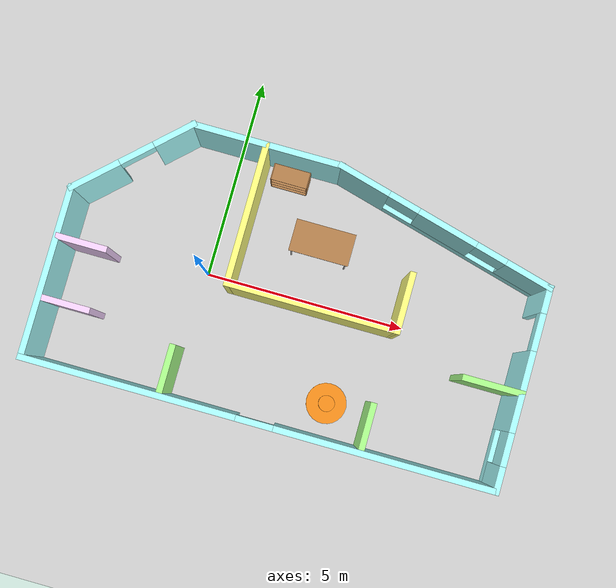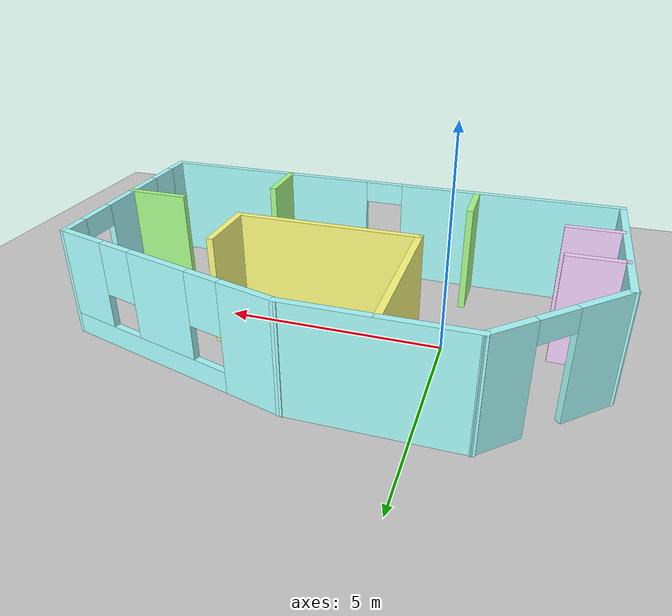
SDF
<sdf version="1.6">
 <world name="default">
  <light name="sun" type="directional">
   <pose>0 0 10 0 -0 0</pose>
   <diffuse>0.8 0.8 0.8 1</diffuse>
   <specular>0.2 0.2 0.2 1</specular>
   <attenuation>
    <range>1000</range>
    <constant>0.9</constant>
    <linear>0.01</linear>
    <quadratic>0.001</quadratic>
   </attenuation>
   <direction>-0.5 0.1 -0.9</direction>
  </light>
  <model name="ground_plane">
   <static>1</static>
   <link name="link">
    <collision name="collision">
     <geometry><plane><normal>0 0 1</normal><size>100 100</size></plane></geometry>
     <surface><friction><ode><mu>100</mu><mu2>50</mu2></ode></friction></surface>
    </collision>
    <visual name="visual">
     <cast_shadows>0</cast_shadows>
     <geometry><plane><normal>0 0 1</normal><size>100 100</size></plane></geometry>
     <material>
      <script><uri>file://media/materials/scripts/gazebo.material</uri><name>Gazebo/Grey</name></script>
     </material>
    </visual>
   </link>
  </model>
  <gravity>0 0 -9.8</gravity>
  <magnetic_field>6e-06 2.3e-05 -4.2e-05</magnetic_field>
  <atmosphere type="adiabatic"/>
  <physics name="default_physics" default="0" type="ode">
   <max_step_size>0.001</max_step_size>
   <real_time_factor>1</real_time_factor>
   <real_time_update_rate>1000</real_time_update_rate>
  </physics>
  <scene><ambient>0.4 0.4 0.4 1</ambient><background>0.7 0.7 0.7 1</background><shadows>1</shadows></scene>
  <spherical_coordinates>
   <surface_model>EARTH_WGS84</surface_model>
   <latitude_deg>0</latitude_deg>
   <longitude_deg>0</longitude_deg>
   <elevation>0</elevation>
   <heading_deg>0</heading_deg>
  </spherical_coordinates>
  <model name="building">
   <pose>2.22048 0.011721 0 0 -0 0</pose>
   <link name="Wall_0">
    <collision name="Wall_0_Collision">
     <geometry><box><size>3.75 0.15 2.5</size></box></geometry>
     <pose>0 0 1.25 0 -0 0</pose>
    </collision>
    <visual name="Wall_0_Visual">
     <pose>0 0 1.25 0 -0 0</pose>
     <geometry><box><size>3.75 0.15 2.5</size></box></geometry>
     <material>
      <script><uri>file://media/materials/scripts/gazebo.material</uri><name>Gazebo/Grey</name></script>
      <ambient>0.666667 1 1 1</ambient>
     </material>
     <meta><layer>0</layer></meta>
    </visual>
    <pose>-1.5271 3.13419 0 0 -0 0</pose>
   </link>
   <link name="Wall_1">
    <pose>2.97749 2.40949 0 0 0 -0.261799</pose>
    <visual name="Wall_1_Visual_0">
     <pose>-2.18873 0 1.25 0 -0 0</pose>
     <geometry><box><size>1.37255 0.15 2.5</size></box></geometry>
     <material>
      <script><uri>file://media/materials/scripts/gazebo.material</uri><name>Gazebo/Grey</name></script>
      <ambient>0.666667 1 1 1</ambient>
     </material>
     <meta><layer>0</layer></meta>
    </visual>
    <collision name="Wall_1_Collision_0">
     <geometry><box><size>1.37255 0.15 2.5</size></box></geometry>
     <pose>-2.18873 0 1.25 0 -0 0</pose>
    </collision>
    <visual name="Wall_1_Visual_1">
     <pose>0.686274 0 0.25 0 -0 0</pose>
     <geometry><box><size>4.37745 0.15 0.5</size></box></geometry>
     <material>
      <script><uri>file://media/materials/scripts/gazebo.material</uri><name>Gazebo/Grey</name></script>
      <ambient>0.666667 1 1 1</ambient>
     </material>
     <meta><layer>0</layer></meta>
    </visual>
    <collision name="Wall_1_Collision_1">
     <geometry><box><size>4.37745 0.15 0.5</size></box></geometry>
     <pose>0.686274 0 0.25 0 -0 0</pose>
    </collision>
    <visual name="Wall_1_Visual_2">
     <pose>0.069518 0 1.5 0 -0 0</pose>
     <geometry><box><size>1.54394 0.15 2</size></box></geometry>
     <material>
      <script><uri>file://media/materials/scripts/gazebo.material</uri><name>Gazebo/Grey</name></script>
      <ambient>0.666667 1 1 1</ambient>
     </material>
     <meta><layer>0</layer></meta>
    </visual>
    <collision name="Wall_1_Collision_2">
     <geometry><box><size>1.54394 0.15 2</size></box></geometry>
     <pose>0.069518 0 1.5 0 -0 0</pose>
    </collision>
    <visual name="Wall_1_Visual_3">
     <pose>2.25824 0 1.5 0 -0 0</pose>
     <geometry><box><size>1.23351 0.15 2</size></box></geometry>
     <material>
      <script><uri>file://media/materials/scripts/gazebo.material</uri><name>Gazebo/Grey</name></script>
      <ambient>0.666667 1 1 1</ambient>
     </material>
     <meta><layer>0</layer></meta>
    </visual>
    <collision name="Wall_1_Collision_3">
     <geometry><box><size>1.23351 0.15 2</size></box></geometry>
     <pose>2.25824 0 1.5 0 -0 0</pose>
    </collision>
    <visual name="Wall_1_Visual_4">
     <pose>-1.10245 0 1.9 0 -0 0</pose>
     <geometry><box><size>0.8 0.15 1.2</size></box></geometry>
     <material>
      <script><uri>file://media/materials/scripts/gazebo.material</uri><name>Gazebo/Grey</name></script>
      <ambient>0.666667 1 1 1</ambient>
     </material>
     <meta><layer>0</layer></meta>
    </visual>
    <collision name="Wall_1_Collision_4">
     <geometry><box><size>0.8 0.15 1.2</size></box></geometry>
     <pose>-1.10245 0 1.9 0 -0 0</pose>
    </collision>
    <visual name="Wall_1_Visual_5">
     <pose>1.24149 0 1.9 0 -0 0</pose>
     <geometry><box><size>0.8 0.15 1.2</size></box></geometry>
     <material>
      <script><uri>file://media/materials/scripts/gazebo.material</uri><name>Gazebo/Grey</name></script>
      <ambient>0.666667 1 1 1</ambient>
     </material>
     <meta><layer>0</layer></meta>
    </visual>
    <collision name="Wall_1_Collision_5">
     <geometry><box><size>0.8 0.15 1.2</size></box></geometry>
     <pose>1.24149 0 1.9 0 -0 0</pose>
    </collision>
   </link>
   <link name="Wall_14">
    <collision name="Wall_14_Collision">
     <geometry><box><size>1.25 0.15 2.5</size></box></geometry>
     <pose>0 0 1.25 0 -0 0</pose>
    </collision>
    <visual name="Wall_14_Visual">
     <pose>0 0 1.25 0 -0 0</pose>
     <geometry><box><size>1.25 0.15 2.5</size></box></geometry>
     <material>
      <script><uri>file://media/materials/scripts/gazebo.material</uri><name>Gazebo/Grey</name></script>
      <ambient>0.964706 0.827451 1 1</ambient>
     </material>
     <meta><layer>0</layer></meta>
    </visual>
    <pose>-5.07005 -0.244894 0 0 -0 0</pose>
   </link>
   <link name="Wall_16">
    <collision name="Wall_16_Collision">
     <geometry><box><size>1.25 0.15 2.5</size></box></geometry>
     <pose>0 0 1.25 0 -0 0</pose>
    </collision>
    <visual name="Wall_16_Visual">
     <pose>0 0 1.25 0 -0 0</pose>
     <geometry><box><size>1.25 0.15 2.5</size></box></geometry>
     <material>
      <script><uri>file://media/materials/scripts/gazebo.material</uri><name>Gazebo/Grey</name></script>
      <ambient>0.964706 0.827451 1 1</ambient>
     </material>
     <meta><layer>0</layer></meta>
    </visual>
    <pose>-5.04994 -1.71318 0 0 -0 0</pose>
   </link>
   <link name="Wall_18">
    <collision name="Wall_18_Collision">
     <geometry><box><size>1.5 0.15 2.5</size></box></geometry>
     <pose>0 0 1.25 0 -0 0</pose>
    </collision>
    <visual name="Wall_18_Visual">
     <pose>0 0 1.25 0 -0 0</pose>
     <geometry><box><size>1.5 0.15 2.5</size></box></geometry>
     <material>
      <script><uri>file://media/materials/scripts/gazebo.material</uri><name>Gazebo/Grey</name></script>
      <ambient>0.666667 1 0.545098 1</ambient>
     </material>
     <meta><layer>0</layer></meta>
    </visual>
    <pose>5.00877 -0.848301 0 0 -0 3.14159</pose>
   </link>
   <link name="Wall_2">
    <pose>5.68208 -0.740201 0 0 0 -1.5708</pose>
    <visual name="Wall_2_Visual_0">
     <pose>-2.1551 0 1.25 0 -0 0</pose>
     <geometry><box><size>0.68981 0.15 2.5</size></box></geometry>
     <material>
      <script><uri>file://media/materials/scripts/gazebo.material</uri><name>Gazebo/Grey</name></script>
      <ambient>0.666667 1 1 1</ambient>
     </material>
     <meta><layer>0</layer></meta>
    </visual>
    <collision name="Wall_2_Collision_0">
     <geometry><box><size>0.68981 0.15 2.5</size></box></geometry>
     <pose>-2.1551 0 1.25 0 -0 0</pose>
    </collision>
    <visual name="Wall_2_Visual_1">
     <pose>0.062703 0 1.25 0 -0 0</pose>
     <geometry><box><size>1.94579 0.15 2.5</size></box></geometry>
     <material>
      <script><uri>file://media/materials/scripts/gazebo.material</uri><name>Gazebo/Grey</name></script>
      <ambient>0.666667 1 1 1</ambient>
     </material>
     <meta><layer>0</layer></meta>
    </visual>
    <collision name="Wall_2_Collision_1">
     <geometry><box><size>1.94579 0.15 2.5</size></box></geometry>
     <pose>0.062703 0 1.25 0 -0 0</pose>
    </collision>
    <visual name="Wall_2_Visual_2">
     <pose>1.7678 0 0.25 0 -0 0</pose>
     <geometry><box><size>1.4644 0.15 0.5</size></box></geometry>
     <material>
      <script><uri>file://media/materials/scripts/gazebo.material</uri><name>Gazebo/Grey</name></script>
      <ambient>0.666667 1 1 1</ambient>
     </material>
     <meta><layer>0</layer></meta>
    </visual>
    <collision name="Wall_2_Collision_2">
     <geometry><box><size>1.4644 0.15 0.5</size></box></geometry>
     <pose>1.7678 0 0.25 0 -0 0</pose>
    </collision>
    <visual name="Wall_2_Visual_3">
     <pose>2.1678 0 1.5 0 -0 0</pose>
     <geometry><box><size>0.664404 0.15 2</size></box></geometry>
     <material>
      <script><uri>file://media/materials/scripts/gazebo.material</uri><name>Gazebo/Grey</name></script>
      <ambient>0.666667 1 1 1</ambient>
     </material>
     <meta><layer>0</layer></meta>
    </visual>
    <collision name="Wall_2_Collision_3">
     <geometry><box><size>0.664404 0.15 2</size></box></geometry>
     <pose>2.1678 0 1.5 0 -0 0</pose>
    </collision>
    <visual name="Wall_2_Visual_4">
     <pose>1.4356 0 1.9 0 -0 0</pose>
     <geometry><box><size>0.8 0.15 1.2</size></box></geometry>
     <material>
      <script><uri>file://media/materials/scripts/gazebo.material</uri><name>Gazebo/Grey</name></script>
      <ambient>0.666667 1 1 1</ambient>
     </material>
     <meta><layer>0</layer></meta>
    </visual>
    <collision name="Wall_2_Collision_4">
     <geometry><box><size>0.8 0.15 1.2</size></box></geometry>
     <pose>1.4356 0 1.9 0 -0 0</pose>
    </collision>
    <visual name="Wall_2_Visual_5">
     <pose>-1.36019 0 2.25 0 -0 0</pose>
     <geometry><box><size>0.9 0.15 0.5</size></box></geometry>
     <material>
      <script><uri>file://media/materials/scripts/gazebo.material</uri><name>Gazebo/Grey</name></script>
      <ambient>0.666667 1 1 1</ambient>
     </material>
     <meta><layer>0</layer></meta>
    </visual>
    <collision name="Wall_2_Collision_5">
     <geometry><box><size>0.9 0.15 0.5</size></box></geometry>
     <pose>-1.36019 0 2.25 0 -0 0</pose>
    </collision>
   </link>
   <link name="Wall_20">
    <collision name="Wall_20_Collision">
     <geometry><box><size>1.25 0.15 2.5</size></box></geometry>
     <pose>0 0 1.25 0 -0 0</pose>
    </collision>
    <visual name="Wall_20_Visual">
     <pose>0 0 1.25 0 -0 0</pose>
     <geometry><box><size>1.25 0.15 2.5</size></box></geometry>
     <material>
      <script><uri>file://media/materials/scripts/gazebo.material</uri><name>Gazebo/Grey</name></script>
      <ambient>0.666667 1 0.545098 1</ambient>
     </material>
     <meta><layer>0</layer></meta>
    </visual>
    <pose>-2.36165 -2.55102 0 0 -0 1.5708</pose>
   </link>
   <link name="Wall_22">
    <collision name="Wall_22_Collision">
     <geometry><box><size>1.25 0.15 2.5</size></box></geometry>
     <pose>0 0 1.25 0 -0 0</pose>
    </collision>
    <visual name="Wall_22_Visual">
     <pose>0 0 1.25 0 -0 0</pose>
     <geometry><box><size>1.25 0.15 2.5</size></box></geometry>
     <material>
      <script><uri>file://media/materials/scripts/gazebo.material</uri><name>Gazebo/Grey</name></script>
      <ambient>0.666667 1 0.545098 1</ambient>
     </material>
     <meta><layer>0</layer></meta>
    </visual>
    <pose>2.4656 -2.59125 0 0 -0 1.5708</pose>
   </link>
   <link name="Wall_3">
    <pose>0.007079 -3.1652 0 0 -0 3.14159</pose>
    <visual name="Wall_3_Visual_0">
     <pose>-3.06211 0 1.25 0 -0 0</pose>
     <geometry><box><size>5.37579 0.15 2.5</size></box></geometry>
     <material>
      <script><uri>file://media/materials/scripts/gazebo.material</uri><name>Gazebo/Grey</name></script>
      <ambient>0.666667 1 1 1</ambient>
     </material>
     <meta><layer>0</layer></meta>
    </visual>
    <collision name="Wall_3_Collision_0">
     <geometry><box><size>5.37579 0.15 2.5</size></box></geometry>
     <pose>-3.06211 0 1.25 0 -0 0</pose>
    </collision>
    <visual name="Wall_3_Visual_1">
     <pose>3.13789 0 1.25 0 -0 0</pose>
     <geometry><box><size>5.22421 0.15 2.5</size></box></geometry>
     <material>
      <script><uri>file://media/materials/scripts/gazebo.material</uri><name>Gazebo/Grey</name></script>
      <ambient>0.666667 1 1 1</ambient>
     </material>
     <meta><layer>0</layer></meta>
    </visual>
    <collision name="Wall_3_Collision_1">
     <geometry><box><size>5.22421 0.15 2.5</size></box></geometry>
     <pose>3.13789 0 1.25 0 -0 0</pose>
    </collision>
    <visual name="Wall_3_Visual_2">
     <pose>0.075786 0 2.25 0 -0 0</pose>
     <geometry><box><size>0.9 0.15 0.5</size></box></geometry>
     <material>
      <script><uri>file://media/materials/scripts/gazebo.material</uri><name>Gazebo/Grey</name></script>
      <ambient>0.666667 1 1 1</ambient>
     </material>
     <meta><layer>0</layer></meta>
    </visual>
    <collision name="Wall_3_Collision_2">
     <geometry><box><size>0.9 0.15 0.5</size></box></geometry>
     <pose>0.075786 0 2.25 0 -0 0</pose>
    </collision>
   </link>
   <link name="Wall_4">
    <collision name="Wall_4_Collision">
     <geometry><box><size>4.25 0.15 2.5</size></box></geometry>
     <pose>0 0 1.25 0 -0 0</pose>
    </collision>
    <visual name="Wall_4_Visual">
     <pose>0 0 1.25 0 -0 0</pose>
     <geometry><box><size>4.25 0.15 2.5</size></box></geometry>
     <material>
      <script><uri>file://media/materials/scripts/gazebo.material</uri><name>Gazebo/Grey</name></script>
      <ambient>0.666667 1 1 1</ambient>
     </material>
     <meta><layer>0</layer></meta>
    </visual>
    <pose>-5.66792 -1.1152 0 0 -0 1.5708</pose>
   </link>
   <link name="Wall_5">
    <pose>-4.49751 2.03449 0 0 -0 0.754258</pose>
    <visual name="Wall_5_Visual_0">
     <pose>-1.00992 0 1.25 0 -0 0</pose>
     <geometry><box><size>1.34212 0.15 2.5</size></box></geometry>
     <material>
      <script><uri>file://media/materials/scripts/gazebo.material</uri><name>Gazebo/Grey</name></script>
      <ambient>0.666667 1 1 1</ambient>
     </material>
     <meta><layer>0</layer></meta>
    </visual>
    <collision name="Wall_5_Collision_0">
     <geometry><box><size>1.34212 0.15 2.5</size></box></geometry>
     <pose>-1.00992 0 1.25 0 -0 0</pose>
    </collision>
    <visual name="Wall_5_Visual_1">
     <pose>1.12106 0 1.25 0 -0 0</pose>
     <geometry><box><size>1.11985 0.15 2.5</size></box></geometry>
     <material>
      <script><uri>file://media/materials/scripts/gazebo.material</uri><name>Gazebo/Grey</name></script>
      <ambient>0.666667 1 1 1</ambient>
     </material>
     <meta><layer>0</layer></meta>
    </visual>
    <collision name="Wall_5_Collision_1">
     <geometry><box><size>1.11985 0.15 2.5</size></box></geometry>
     <pose>1.12106 0 1.25 0 -0 0</pose>
    </collision>
    <visual name="Wall_5_Visual_2">
     <pose>0.111136 0 2.25 0 -0 0</pose>
     <geometry><box><size>0.9 0.15 0.5</size></box></geometry>
     <material>
      <script><uri>file://media/materials/scripts/gazebo.material</uri><name>Gazebo/Grey</name></script>
      <ambient>0.666667 1 1 1</ambient>
     </material>
     <meta><layer>0</layer></meta>
    </visual>
    <collision name="Wall_5_Collision_2">
     <geometry><box><size>0.9 0.15 0.5</size></box></geometry>
     <pose>0.111136 0 2.25 0 -0 0</pose>
    </collision>
   </link>
   <link name="Wall_7">
    <collision name="Wall_7_Collision">
     <geometry><box><size>3.5 0.15 2.5</size></box></geometry>
     <pose>0 0 1.25 0 -0 0</pose>
    </collision>
    <visual name="Wall_7_Visual">
     <pose>0 0 1.25 0 -0 0</pose>
     <geometry><box><size>3.5 0.15 2.5</size></box></geometry>
     <material>
      <script><uri>file://media/materials/scripts/gazebo.material</uri><name>Gazebo/Grey</name></script>
      <ambient>1 1 0.498039 1</ambient>
     </material>
     <meta><layer>0</layer></meta>
    </visual>
    <pose>-1.55711 1.43907 0 0 0 -1.5708</pose>
   </link>
   <link name="Wall_8">
    <collision name="Wall_8_Collision">
     <geometry><box><size>4.25 0.15 2.5</size></box></geometry>
     <pose>0 0 1.25 0 -0 0</pose>
    </collision>
    <visual name="Wall_8_Visual">
     <pose>0 0 1.25 0 -0 0</pose>
     <geometry><box><size>4.25 0.15 2.5</size></box></geometry>
     <material>
      <script><uri>file://media/materials/scripts/gazebo.material</uri><name>Gazebo/Grey</name></script>
      <ambient>1 1 0.498039 1</ambient>
     </material>
     <meta><layer>0</layer></meta>
    </visual>
    <pose>0.492889 -0.235927 0 0 -0 0</pose>
   </link>
   <link name="Wall_9">
    <collision name="Wall_9_Collision">
     <geometry><box><size>1.5 0.15 2.5</size></box></geometry>
     <pose>0 0 1.25 0 -0 0</pose>
    </collision>
    <visual name="Wall_9_Visual">
     <pose>0 0 1.25 0 -0 0</pose>
     <geometry><box><size>1.5 0.15 2.5</size></box></geometry>
     <material>
      <script><uri>file://media/materials/scripts/gazebo.material</uri><name>Gazebo/Grey</name></script>
      <ambient>1 1 0.498039 1</ambient>
     </material>
     <meta><layer>0</layer></meta>
    </visual>
    <pose>2.54289 0.439073 0 0 -0 1.5708</pose>
   </link>
   <static>1</static>
  </model>
  <model name="my_caster">
   <link name="link_0">
    <pose>0.003333 -0 0.025 0 -0 0</pose>
    <inertial>
     <mass>1</mass>
     <inertia><ixx>0.145833</ixx><ixy>0</ixy><ixz>0</ixz><iyy>0.145833</iyy><iyz>0</iyz><izz>0.125</izz></inertia>
    </inertial>
    <visual name="visual">
     <geometry><cylinder><radius>0.5</radius><length>0.2</length></cylinder></geometry>
     <material>
      <lighting>1</lighting>
      <script><uri>file://media/materials/scripts/gazebo.material</uri><name>Gazebo/Orange</name></script>
      <shader type="pixel"><normal_map>__default__</normal_map></shader>
      <ambient>1 0.5088 0.0468 1</ambient>
      <diffuse>1 0.5088 0.0468 1</diffuse>
      <specular>0.5 0.5 0.5 128</specular>
      <emissive>0 0 0 1</emissive>
     </material>
    </visual>
    <collision name="collision">
     <geometry><cylinder><radius>0.5</radius><length>0.2</length></cylinder></geometry>
     <surface>
      <friction>
       <ode><mu>1</mu><mu2>1</mu2><fdir1>0 0 0</fdir1><slip1>0</slip1><slip2>0</slip2></ode>
       <torsional>
        <coefficient>1</coefficient>
        <patch_radius>0</patch_radius>
        <surface_radius>0</surface_radius>
        <use_patch_radius>1</use_patch_radius>
        <ode><slip>0</slip></ode>
       </torsional>
      </friction>
      <bounce><restitution_coefficient>0</restitution_coefficient><threshold>1e+06</threshold></bounce>
      <contact>
       <collide_without_contact>0</collide_without_contact>
       <collide_without_contact_bitmask>1</collide_without_contact_bitmask>
       <collide_bitmask>1</collide_bitmask>
       <ode>
        <soft_cfm>0</soft_cfm>
        <soft_erp>0.2</soft_erp>
        <kp>1e+13</kp>
        <kd>1</kd>
        <max_vel>0.01</max_vel>
        <min_depth>0</min_depth>
       </ode>
       <bullet>
        <split_impulse>1</split_impulse>
        <split_impulse_penetration_threshold>-0.01</split_impulse_penetration_threshold>
        <soft_cfm>0</soft_cfm>
        <soft_erp>0.2</soft_erp>
        <kp>1e+13</kp>
        <kd>1</kd>
       </bullet>
      </contact>
     </surface>
    </collision>
   </link>
   <link name="link_1">
    <pose>-0.016667 -0.4 -0.075 0 -0 0</pose>
    <inertial>
     <mass>1</mass>
     <inertia><ixx>0.1</ixx><ixy>0</ixy><ixz>0</ixz><iyy>0.1</iyy><iyz>0</iyz><izz>0.1</izz></inertia>
    </inertial>
    <visual name="visual">
     <geometry><sphere><radius>0.1</radius></sphere></geometry>
     <material>
      <lighting>1</lighting>
      <script><uri>file://media/materials/scripts/gazebo.material</uri><name>Gazebo/Yellow</name></script>
      <shader type="pixel"><normal_map>__default__</normal_map></shader>
      <ambient>1 1 0 1</ambient>
      <diffuse>1 1 0 1</diffuse>
      <specular>0 0 0 1</specular>
      <emissive>0 0 0 1</emissive>
     </material>
    </visual>
    <collision name="collision">
     <geometry><sphere><radius>0.1</radius></sphere></geometry>
     <surface>
      <friction>
       <ode><mu>1</mu><mu2>1</mu2><fdir1>0 0 0</fdir1><slip1>0</slip1><slip2>0</slip2></ode>
       <torsional>
        <coefficient>1</coefficient>
        <patch_radius>0</patch_radius>
        <surface_radius>0</surface_radius>
        <use_patch_radius>1</use_patch_radius>
        <ode><slip>0</slip></ode>
       </torsional>
      </friction>
      <bounce><restitution_coefficient>0</restitution_coefficient><threshold>1e+06</threshold></bounce>
      <contact>
       <collide_without_contact>0</collide_without_contact>
       <collide_without_contact_bitmask>1</collide_without_contact_bitmask>
       <collide_bitmask>1</collide_bitmask>
       <ode>
        <soft_cfm>0</soft_cfm>
        <soft_erp>0.2</soft_erp>
        <kp>1e+13</kp>
        <kd>1</kd>
        <max_vel>0.01</max_vel>
        <min_depth>0</min_depth>
       </ode>
       <bullet>
        <split_impulse>1</split_impulse>
        <split_impulse_penetration_threshold>-0.01</split_impulse_penetration_threshold>
        <soft_cfm>0</soft_cfm>
        <soft_erp>0.2</soft_erp>
        <kp>1e+13</kp>
        <kd>1</kd>
       </bullet>
      </contact>
     </surface>
    </collision>
   </link>
   <link name="link_1_clone">
    <pose>0.003333 0.4 -0.075 0 -0 0</pose>
    <inertial>
     <mass>1</mass>
     <inertia><ixx>0.1</ixx><ixy>0</ixy><ixz>0</ixz><iyy>0.1</iyy><iyz>0</iyz><izz>0.1</izz></inertia>
    </inertial>
    <visual name="visual">
     <geometry><sphere><radius>0.1</radius></sphere></geometry>
     <material>
      <lighting>1</lighting>
      <script><uri>file://media/materials/scripts/gazebo.material</uri><name>Gazebo/Yellow</name></script>
      <shader type="pixel"><normal_map>__default__</normal_map></shader>
      <ambient>1 1 0 1</ambient>
      <diffuse>1 1 0 1</diffuse>
      <specular>0 0 0 1</specular>
      <emissive>0 0 0 1</emissive>
     </material>
    </visual>
    <collision name="collision">
     <geometry><sphere><radius>0.1</radius></sphere></geometry>
     <surface>
      <friction>
       <ode><mu>1</mu><mu2>1</mu2><fdir1>0 0 0</fdir1><slip1>0</slip1><slip2>0</slip2></ode>
       <torsional>
        <coefficient>1</coefficient>
        <patch_radius>0</patch_radius>
        <surface_radius>0</surface_radius>
        <use_patch_radius>1</use_patch_radius>
        <ode><slip>0</slip></ode>
       </torsional>
      </friction>
      <bounce><restitution_coefficient>0</restitution_coefficient><threshold>1e+06</threshold></bounce>
      <contact>
       <collide_without_contact>0</collide_without_contact>
       <collide_without_contact_bitmask>1</collide_without_contact_bitmask>
       <collide_bitmask>1</collide_bitmask>
       <ode>
        <soft_cfm>0</soft_cfm>
        <soft_erp>0.2</soft_erp>
        <kp>1e+13</kp>
        <kd>1</kd>
        <max_vel>0.01</max_vel>
        <min_depth>0</min_depth>
       </ode>
       <bullet>
        <split_impulse>1</split_impulse>
        <split_impulse_penetration_threshold>-0.01</split_impulse_penetration_threshold>
        <soft_cfm>0</soft_cfm>
        <soft_erp>0.2</soft_erp>
        <kp>1e+13</kp>
        <kd>1</kd>
       </bullet>
      </contact>
     </surface>
    </collision>
   </link>
   <link name="link_1_clone_0">
    <pose>0.403333 -0 -0.075 0 -0 0</pose>
    <inertial>
     <mass>1</mass>
     <inertia><ixx>0.1</ixx><ixy>0</ixy><ixz>0</ixz><iyy>0.1</iyy><iyz>0</iyz><izz>0.1</izz></inertia>
    </inertial>
    <visual name="visual">
     <geometry><sphere><radius>0.1</radius></sphere></geometry>
     <material>
      <lighting>1</lighting>
      <script><uri>file://media/materials/scripts/gazebo.material</uri><name>Gazebo/Yellow</name></script>
      <shader type="pixel"><normal_map>__default__</normal_map></shader>
      <ambient>1 1 0 1</ambient>
      <diffuse>1 1 0 1</diffuse>
      <specular>0 0 0 1</specular>
      <emissive>0 0 0 1</emissive>
     </material>
    </visual>
    <collision name="collision">
     <geometry><sphere><radius>0.1</radius></sphere></geometry>
     <surface>
      <friction>
       <ode><mu>1</mu><mu2>1</mu2><fdir1>0 0 0</fdir1><slip1>0</slip1><slip2>0</slip2></ode>
       <torsional>
        <coefficient>1</coefficient>
        <patch_radius>0</patch_radius>
        <surface_radius>0</surface_radius>
        <use_patch_radius>1</use_patch_radius>
        <ode><slip>0</slip></ode>
       </torsional>
      </friction>
      <bounce><restitution_coefficient>0</restitution_coefficient><threshold>1e+06</threshold></bounce>
      <contact>
       <collide_without_contact>0</collide_without_contact>
       <collide_without_contact_bitmask>1</collide_without_contact_bitmask>
       <collide_bitmask>1</collide_bitmask>
       <ode>
        <soft_cfm>0</soft_cfm>
        <soft_erp>0.2</soft_erp>
        <kp>1e+13</kp>
        <kd>1</kd>
        <max_vel>0.01</max_vel>
        <min_depth>0</min_depth>
       </ode>
       <bullet>
        <split_impulse>1</split_impulse>
        <split_impulse_penetration_threshold>-0.01</split_impulse_penetration_threshold>
        <soft_cfm>0</soft_cfm>
        <soft_erp>0.2</soft_erp>
        <kp>1e+13</kp>
        <kd>1</kd>
       </bullet>
      </contact>
     </surface>
    </collision>
   </link>
   <link name="link_1_clone_1">
    <pose>-0.396667 -0 -0.075 0 -0 0</pose>
    <inertial>
     <mass>1</mass>
     <inertia><ixx>0.1</ixx><ixy>0</ixy><ixz>0</ixz><iyy>0.1</iyy><iyz>0</iyz><izz>0.1</izz></inertia>
    </inertial>
    <visual name="visual">
     <geometry><sphere><radius>0.1</radius></sphere></geometry>
     <material>
      <lighting>1</lighting>
      <script><uri>file://media/materials/scripts/gazebo.material</uri><name>Gazebo/Yellow</name></script>
      <shader type="pixel"><normal_map>__default__</normal_map></shader>
      <ambient>1 1 0 1</ambient>
      <diffuse>1 1 0 1</diffuse>
      <specular>0 0 0 1</specular>
      <emissive>0 0 0 1</emissive>
     </material>
    </visual>
    <collision name="collision">
     <geometry><sphere><radius>0.1</radius></sphere></geometry>
     <surface>
      <friction>
       <ode><mu>1</mu><mu2>1</mu2><fdir1>0 0 0</fdir1><slip1>0</slip1><slip2>0</slip2></ode>
       <torsional>
        <coefficient>1</coefficient>
        <patch_radius>0</patch_radius>
        <surface_radius>0</surface_radius>
        <use_patch_radius>1</use_patch_radius>
        <ode><slip>0</slip></ode>
       </torsional>
      </friction>
      <bounce><restitution_coefficient>0</restitution_coefficient><threshold>1e+06</threshold></bounce>
      <contact>
       <collide_without_contact>0</collide_without_contact>
       <collide_without_contact_bitmask>1</collide_without_contact_bitmask>
       <collide_bitmask>1</collide_bitmask>
       <ode>
        <soft_cfm>0</soft_cfm>
        <soft_erp>0.2</soft_erp>
        <kp>1e+13</kp>
        <kd>1</kd>
        <max_vel>0.01</max_vel>
        <min_depth>0</min_depth>
       </ode>
       <bullet>
        <split_impulse>1</split_impulse>
        <split_impulse_penetration_threshold>-0.01</split_impulse_penetration_threshold>
        <soft_cfm>0</soft_cfm>
        <soft_erp>0.2</soft_erp>
        <kp>1e+13</kp>
        <kd>1</kd>
       </bullet>
      </contact>
     </surface>
    </collision>
   </link>
   <link name="link_2">
    <pose>0.003333 -0 0.275 0 -0 0</pose>
    <inertial>
     <mass>1</mass>
     <inertia><ixx>0.145833</ixx><ixy>0</ixy><ixz>0</ixz><iyy>0.145833</iyy><iyz>0</iyz><izz>0.125</izz></inertia>
    </inertial>
    <visual name="visual">
     <geometry><cylinder><radius>0.2</radius><length>0.3</length></cylinder></geometry>
     <material>
      <lighting>1</lighting>
      <script><uri>file://media/materials/scripts/gazebo.material</uri><name>Gazebo/Orange</name></script>
      <shader type="pixel"><normal_map>__default__</normal_map></shader>
      <ambient>1 0.5088 0.0468 1</ambient>
      <diffuse>1 0.5088 0.0468 1</diffuse>
      <specular>0.5 0.5 0.5 128</specular>
      <emissive>0 0 0 1</emissive>
     </material>
    </visual>
    <collision name="collision">
     <geometry><cylinder><radius>0.2</radius><length>0.3</length></cylinder></geometry>
     <surface>
      <friction>
       <ode><mu>1</mu><mu2>1</mu2><fdir1>0 0 0</fdir1><slip1>0</slip1><slip2>0</slip2></ode>
       <torsional>
        <coefficient>1</coefficient>
        <patch_radius>0</patch_radius>
        <surface_radius>0</surface_radius>
        <use_patch_radius>1</use_patch_radius>
        <ode><slip>0</slip></ode>
       </torsional>
      </friction>
      <bounce><restitution_coefficient>0</restitution_coefficient><threshold>1e+06</threshold></bounce>
      <contact>
       <collide_without_contact>0</collide_without_contact>
       <collide_without_contact_bitmask>1</collide_without_contact_bitmask>
       <collide_bitmask>1</collide_bitmask>
       <ode>
        <soft_cfm>0</soft_cfm>
        <soft_erp>0.2</soft_erp>
        <kp>1e+13</kp>
        <kd>1</kd>
        <max_vel>0.01</max_vel>
        <min_depth>0</min_depth>
       </ode>
       <bullet>
        <split_impulse>1</split_impulse>
        <split_impulse_penetration_threshold>-0.01</split_impulse_penetration_threshold>
        <soft_cfm>0</soft_cfm>
        <soft_erp>0.2</soft_erp>
        <kp>1e+13</kp>
        <kd>1</kd>
       </bullet>
      </contact>
     </surface>
    </collision>
   </link>
   <joint name="link_0_JOINT_1" type="revolute">
    <parent>link_0</parent>
    <child>link_1</child>
    <axis>
     <xyz>0 0 1</xyz>
     <use_parent_model_frame>0</use_parent_model_frame>
     <limit>
      <lower>-1.79769e+308</lower>
      <upper>1.79769e+308</upper>
      <effort>-1</effort>
      <velocity>-1</velocity>
     </limit>
     <dynamics>
      <spring_reference>0</spring_reference>
      <spring_stiffness>0</spring_stiffness>
      <damping>0</damping>
     </dynamics>
    </axis>
    <physics>
     <ode><limit><cfm>0</cfm><erp>0.2</erp></limit><suspension><cfm>0</cfm><erp>0.2</erp></suspension></ode>
    </physics>
   </joint>
   <joint name="link_0_JOINT_2" type="revolute">
    <parent>link_0</parent>
    <child>link_1_clone</child>
    <axis>
     <xyz>0 0 1</xyz>
     <use_parent_model_frame>0</use_parent_model_frame>
     <limit>
      <lower>-1.79769e+308</lower>
      <upper>1.79769e+308</upper>
      <effort>-1</effort>
      <velocity>-1</velocity>
     </limit>
     <dynamics>
      <spring_reference>0</spring_reference>
      <spring_stiffness>0</spring_stiffness>
      <damping>0</damping>
     </dynamics>
    </axis>
    <physics>
     <ode><limit><cfm>0</cfm><erp>0.2</erp></limit><suspension><cfm>0</cfm><erp>0.2</erp></suspension></ode>
    </physics>
   </joint>
   <joint name="link_0_JOINT_3" type="revolute">
    <parent>link_0</parent>
    <child>link_1_clone_0</child>
    <axis>
     <xyz>1 0 0</xyz>
     <use_parent_model_frame>0</use_parent_model_frame>
     <limit>
      <lower>-1.79769e+308</lower>
      <upper>1.79769e+308</upper>
      <effort>-1</effort>
      <velocity>-1</velocity>
     </limit>
     <dynamics>
      <spring_reference>0</spring_reference>
      <spring_stiffness>0</spring_stiffness>
      <damping>0</damping>
     </dynamics>
    </axis>
    <physics>
     <ode><limit><cfm>0</cfm><erp>0.2</erp></limit><suspension><cfm>0</cfm><erp>0.2</erp></suspension></ode>
    </physics>
   </joint>
   <joint name="link_0_JOINT_4" type="revolute">
    <parent>link_0</parent>
    <child>link_1_clone_1</child>
    <axis>
     <xyz>0 0 1</xyz>
     <use_parent_model_frame>0</use_parent_model_frame>
     <limit>
      <lower>-1.79769e+308</lower>
      <upper>1.79769e+308</upper>
      <effort>-1</effort>
      <velocity>-1</velocity>
     </limit>
     <dynamics>
      <spring_reference>0</spring_reference>
      <spring_stiffness>0</spring_stiffness>
      <damping>0</damping>
     </dynamics>
    </axis>
    <physics>
     <ode><limit><cfm>0</cfm><erp>0.2</erp></limit><suspension><cfm>0</cfm><erp>0.2</erp></suspension></ode>
    </physics>
   </joint>
   <joint name="link_0_JOINT_6" type="revolute">
    <parent>link_0</parent>
    <child>link_2</child>
    <axis>
     <xyz>0 0 1</xyz>
     <use_parent_model_frame>0</use_parent_model_frame>
     <limit>
      <lower>-1.79769e+308</lower>
      <upper>1.79769e+308</upper>
      <effort>-1</effort>
      <velocity>-1</velocity>
     </limit>
     <dynamics>
      <spring_reference>0</spring_reference>
      <spring_stiffness>0</spring_stiffness>
      <damping>0</damping>
     </dynamics>
    </axis>
    <physics>
     <ode><limit><cfm>0</cfm><erp>0.2</erp></limit><suspension><cfm>0</cfm><erp>0.2</erp></suspension></ode>
    </physics>
   </joint>
   <static>0</static>
   <pose>3.68202 -2.27653 0.174998 4e-06 -5e-06 -0.197847</pose>
  </model>
  <model name="bookshelf">
   <static>1</static>
   <link name="link">
    <inertial><mass>1</mass></inertial>
    <collision name="back">
     <pose>0 0.005 0.6 0 -0 0</pose>
     <geometry><box><size>0.9 0.01 1.2</size></box></geometry>
    </collision>
    <visual name="visual1">
     <pose>0 0.005 0.6 0 -0 0</pose>
     <geometry><box><size>0.9 0.01 1.2</size></box></geometry>
     <material>
      <script><uri>file://media/materials/scripts/gazebo.material</uri><name>Gazebo/Wood</name></script>
     </material>
    </visual>
    <collision name="left_side">
     <pose>0.45 -0.195 0.6 0 -0 0</pose>
     <geometry><box><size>0.02 0.4 1.2</size></box></geometry>
    </collision>
    <visual name="visual2">
     <pose>0.45 -0.195 0.6 0 -0 0</pose>
     <geometry><box><size>0.02 0.4 1.2</size></box></geometry>
     <material>
      <script><uri>file://media/materials/scripts/gazebo.material</uri><name>Gazebo/Wood</name></script>
     </material>
    </visual>
    <collision name="right_side">
     <pose>-0.45 -0.195 0.6 0 -0 0</pose>
     <geometry><box><size>0.02 0.4 1.2</size></box></geometry>
    </collision>
    <visual name="visual3">
     <pose>-0.45 -0.195 0.6 0 -0 0</pose>
     <geometry><box><size>0.02 0.4 1.2</size></box></geometry>
     <material>
      <script><uri>file://media/materials/scripts/gazebo.material</uri><name>Gazebo/Wood</name></script>
     </material>
    </visual>
    <collision name="bottom">
     <pose>0 -0.195 0.03 0 -0 0</pose>
     <geometry><box><size>0.88 0.4 0.06</size></box></geometry>
    </collision>
    <visual name="visual4">
     <pose>0 -0.195 0.03 0 -0 0</pose>
     <geometry><box><size>0.88 0.4 0.06</size></box></geometry>
     <material>
      <script><uri>file://media/materials/scripts/gazebo.material</uri><name>Gazebo/Wood</name></script>
     </material>
    </visual>
    <collision name="top">
     <pose>0 -0.195 1.19 0 -0 0</pose>
     <geometry><box><size>0.88 0.4 0.02</size></box></geometry>
    </collision>
    <visual name="visual5">
     <pose>0 -0.195 1.19 0 -0 0</pose>
     <geometry><box><size>0.88 0.4 0.02</size></box></geometry>
     <material>
      <script><uri>file://media/materials/scripts/gazebo.material</uri><name>Gazebo/Wood</name></script>
     </material>
    </visual>
    <collision name="low_shelf">
     <pose>0 -0.195 0.43 0 -0 0</pose>
     <geometry><box><size>0.88 0.4 0.02</size></box></geometry>
    </collision>
    <visual name="visual6">
     <pose>0 -0.195 0.43 0 -0 0</pose>
     <geometry><box><size>0.88 0.4 0.02</size></box></geometry>
     <material>
      <script><uri>file://media/materials/scripts/gazebo.material</uri><name>Gazebo/Wood</name></script>
     </material>
    </visual>
    <collision name="high_shelf">
     <pose>0 -0.195 0.8 0 -0 0</pose>
     <geometry><box><size>0.88 0.4 0.02</size></box></geometry>
    </collision>
    <visual name="visual7">
     <pose>0 -0.195 0.8 0 -0 0</pose>
     <geometry><box><size>0.88 0.4 0.02</size></box></geometry>
     <material>
      <script><uri>file://media/materials/scripts/gazebo.material</uri><name>Gazebo/Wood</name></script>
     </material>
    </visual>
   </link>
   <pose>1.35549 2.97481 0 0 -0 0</pose>
  </model>
  <model name="table">
   <static>1</static>
   <link name="link">
    <collision name="surface">
     <pose>0 0 1 0 -0 0</pose>
     <geometry><box><size>1.5 0.8 0.03</size></box></geometry>
     <surface><friction><ode><mu>0.6</mu><mu2>0.6</mu2></ode></friction></surface>
    </collision>
    <visual name="visual1">
     <pose>0 0 1 0 -0 0</pose>
     <geometry><box><size>1.5 0.8 0.03</size></box></geometry>
     <material>
      <script><uri>file://media/materials/scripts/gazebo.material</uri><name>Gazebo/Wood</name></script>
     </material>
    </visual>
    <collision name="front_left_leg">
     <pose>0.68 0.38 0.5 0 -0 0</pose>
     <geometry><cylinder><radius>0.02</radius><length>1</length></cylinder></geometry>
    </collision>
    <visual name="front_left_leg">
     <pose>0.68 0.38 0.5 0 -0 0</pose>
     <geometry><cylinder><radius>0.02</radius><length>1</length></cylinder></geometry>
     <material>
      <script><uri>file://media/materials/scripts/gazebo.material</uri><name>Gazebo/Grey</name></script>
     </material>
    </visual>
    <collision name="front_right_leg">
     <pose>0.68 -0.38 0.5 0 -0 0</pose>
     <geometry><cylinder><radius>0.02</radius><length>1</length></cylinder></geometry>
    </collision>
    <visual name="front_right_leg">
     <pose>0.68 -0.38 0.5 0 -0 0</pose>
     <geometry><cylinder><radius>0.02</radius><length>1</length></cylinder></geometry>
     <material>
      <script><uri>file://media/materials/scripts/gazebo.material</uri><name>Gazebo/Grey</name></script>
     </material>
    </visual>
    <collision name="back_right_leg">
     <pose>-0.68 -0.38 0.5 0 -0 0</pose>
     <geometry><cylinder><radius>0.02</radius><length>1</length></cylinder></geometry>
    </collision>
    <visual name="back_right_leg">
     <pose>-0.68 -0.38 0.5 0 -0 0</pose>
     <geometry><cylinder><radius>0.02</radius><length>1</length></cylinder></geometry>
     <material>
      <script><uri>file://media/materials/scripts/gazebo.material</uri><name>Gazebo/Grey</name></script>
     </material>
    </visual>
    <collision name="back_left_leg">
     <pose>-0.68 0.38 0.5 0 -0 0</pose>
     <geometry><cylinder><radius>0.02</radius><length>1</length></cylinder></geometry>
    </collision>
    <visual name="back_left_leg">
     <pose>-0.68 0.38 0.5 0 -0 0</pose>
     <geometry><cylinder><radius>0.02</radius><length>1</length></cylinder></geometry>
     <material>
      <script><uri>file://media/materials/scripts/gazebo.material</uri><name>Gazebo/Grey</name></script>
     </material>
    </visual>
   </link>
   <pose>2.53291 1.44646 0 0 -0 0</pose>
  </model>
  <plugin filename="libcollision_map_creator.so" name="collision_map_creator"/>
 </world>
</sdf>
